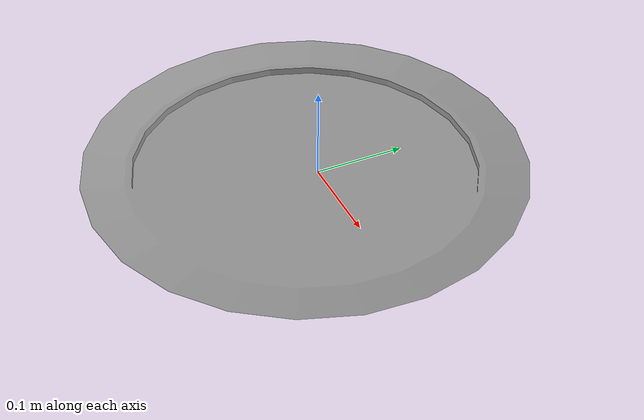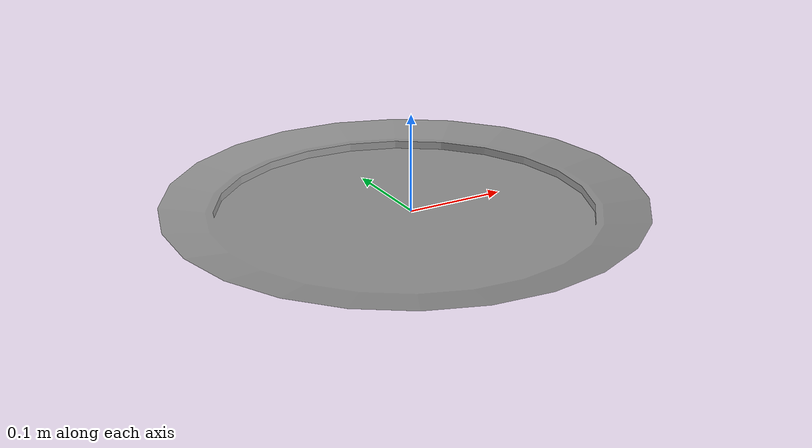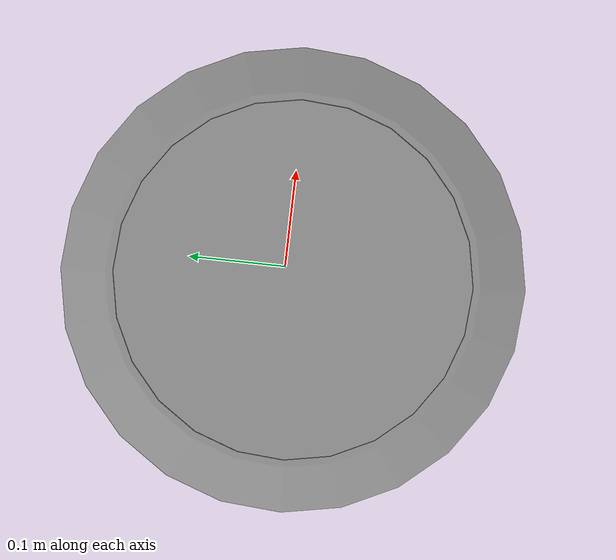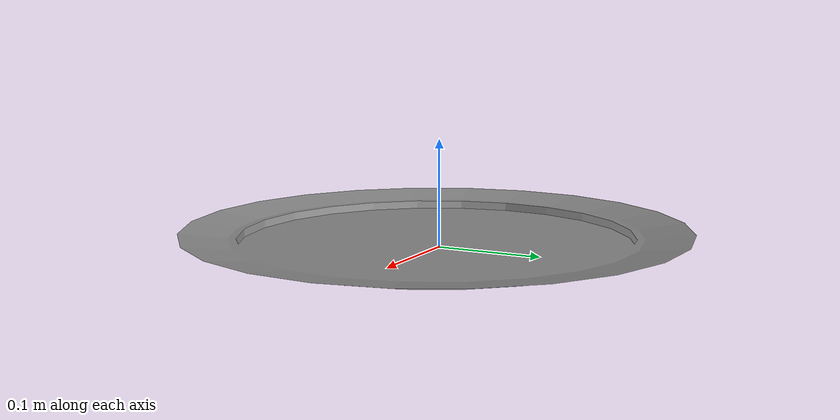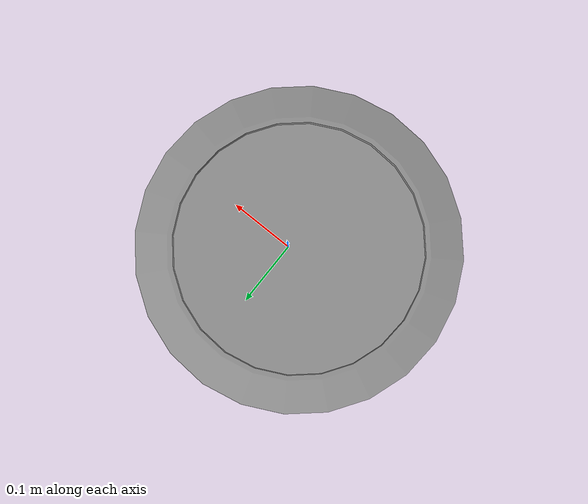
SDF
<?xml version='1.0'?>
<sdf version='1.6'>
  <model name='plate_2'>
    <link name='link_12'>
       <visual name='visual'>
        <pose frame=''>0 0 0 0 -0 0</pose>
        <geometry>
          <mesh>
            <uri>model://plate_2/meshes/plate_2.dae</uri>
            <scale>1 1 1</scale>
          </mesh>
        </geometry>
        <material>
          <lighting>1</lighting>
          <script>
            <uri>file://media/materials/scripts/gazebo.material</uri>
            <name>Gazebo/Grey</name>
          </script>
          <ambient>0.694 0.694 0.694 1</ambient>
          <diffuse>0.694 0.694 0.694 1</diffuse>
          <specular>0.01 0.01 0.01 1</specular>
          <emissive>0 0 0 1</emissive>
          <shader type='vertex'>
            <normal_map>__default__</normal_map>
          </shader>
        </material>
        <cast_shadows>1</cast_shadows>
        <transparency>0</transparency>
      </visual>
      <collision name='collision'>
        <laser_retro>0</laser_retro>
        <max_contacts>10</max_contacts>
        <pose frame=''>0 0 0 0 -0 0</pose>
        <geometry>
          <mesh>
            <uri>model://plate_2/meshes/plate_2.dae</uri>
            <scale>1 1 1</scale>
          </mesh>
        </geometry>
        </collision>
    </link>
    <static>1</static>
    <allow_auto_disable>1</allow_auto_disable>
  </model>
</sdf>
